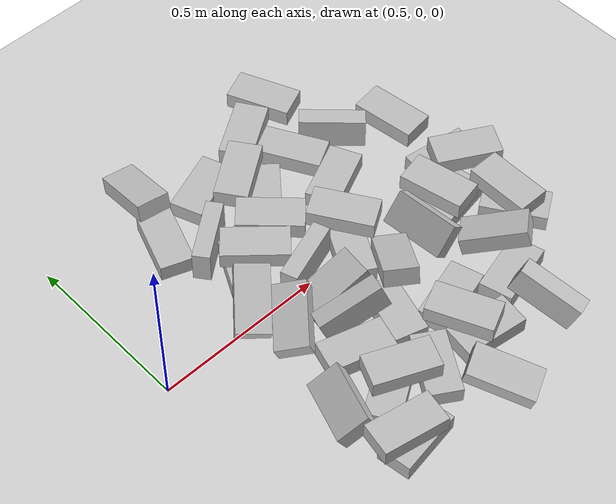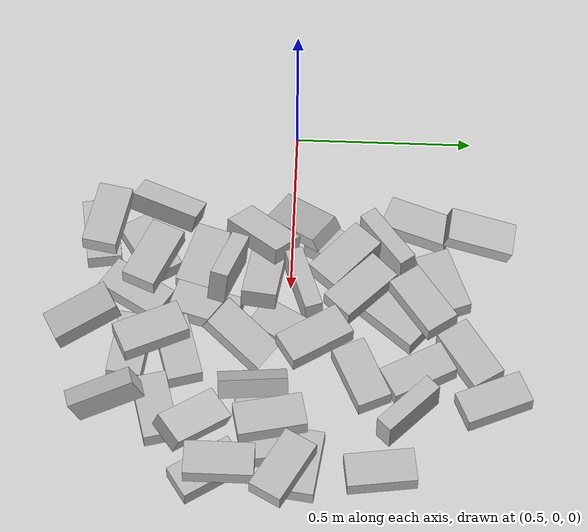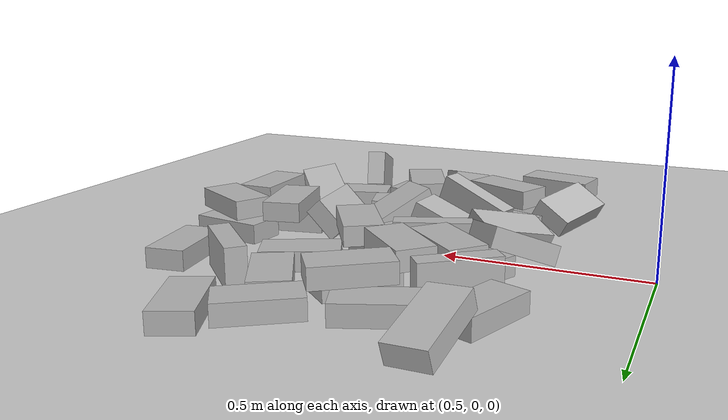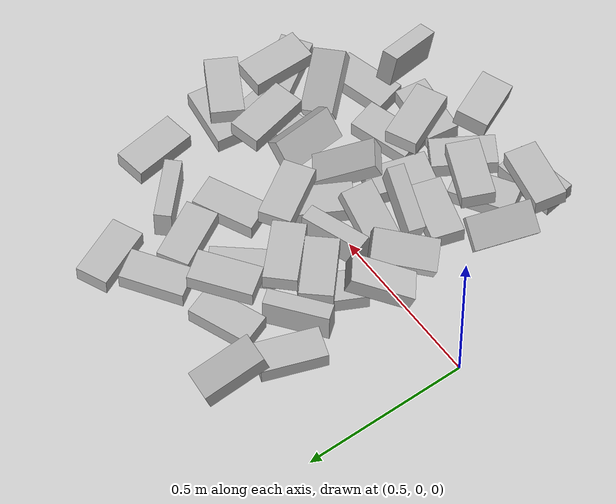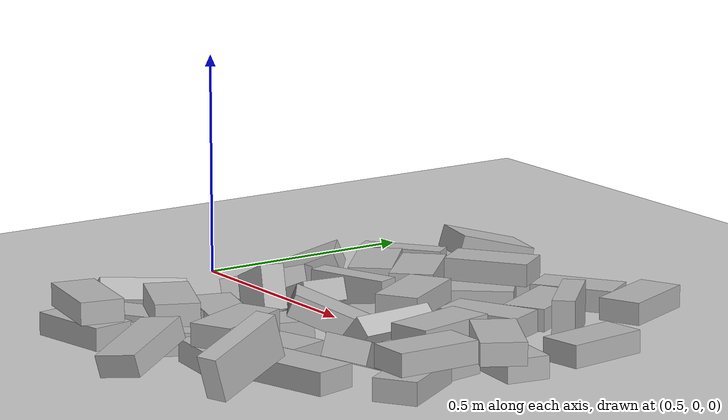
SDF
<sdf version="1.6">
 <world name="default">
  <model name="ground_plane">
   <static>1</static>
   <link name="link">
    <collision name="collision">
     <geometry><plane><normal>0 0 1</normal><size>100 100</size></plane></geometry>
     <surface>
      <contact><collide_bitmask>65535</collide_bitmask></contact>
      <friction><ode><mu>100</mu><mu2>50</mu2></ode></friction>
     </surface>
    </collision>
    <visual name="visual">
     <cast_shadows>0</cast_shadows>
     <geometry><plane><normal>0 0 1</normal><size>100 100</size></plane></geometry>
     <material>
      <script><uri>file://media/materials/scripts/gazebo.material</uri><name>Gazebo/Grey</name></script>
     </material>
    </visual>
   </link>
  </model>
  <model name="dbrick_clone_14_clone_8">
   <static>0</static>
   <self_collide>1</self_collide>
   <link name="link">
    <inertial>
     <mass>2</mass>
     <inertia>
      <ixx>0.0198483</ixx>
      <ixy>0</ixy>
      <ixz>0</ixz>
      <iyy>0.0643333</iyy>
      <iyz>0</iyz>
      <izz>0.0758483</izz>
     </inertia>
    </inertial>
    <collision name="dbrickC"><geometry><box><size>0.19 0.05 0.097</size></box></geometry></collision>
    <visual name="dbrickV">
     <cast_shadows>0</cast_shadows>
     <geometry><box><size>0.19 0.05 0.097</size></box></geometry>
     <material>
      <script>
       <uri>model://dbrick/materials/scripts</uri>
       <uri>model://dbrick/materials/textures</uri>
       <name>vrc/dbrick</name>
      </script>
     </material>
    </visual>
    <self_collide>1</self_collide>
   </link>
   <pose>0.771655 -0.35634 0.053147 -1.03992 -0.075486 -1.91545</pose>
  </model>
  <model name="dbrick_clone_13_clone_9_clone_3">
   <static>0</static>
   <self_collide>1</self_collide>
   <link name="link">
    <inertial>
     <mass>2</mass>
     <inertia>
      <ixx>0.0198483</ixx>
      <ixy>0</ixy>
      <ixz>0</ixz>
      <iyy>0.0643333</iyy>
      <iyz>0</iyz>
      <izz>0.0758483</izz>
     </inertia>
    </inertial>
    <collision name="dbrickC"><geometry><box><size>0.19 0.05 0.097</size></box></geometry></collision>
    <visual name="dbrickV">
     <cast_shadows>0</cast_shadows>
     <geometry><box><size>0.19 0.05 0.097</size></box></geometry>
     <material>
      <script>
       <uri>model://dbrick/materials/scripts</uri>
       <uri>model://dbrick/materials/textures</uri>
       <name>vrc/dbrick</name>
      </script>
     </material>
    </visual>
    <self_collide>1</self_collide>
   </link>
   <pose>1.14423 -0.006562 0.025 -1.5708 -1e-06 1.06223</pose>
  </model>
  <model name="dbrick_clone_13_clone_9_clone_4">
   <static>0</static>
   <self_collide>1</self_collide>
   <link name="link">
    <inertial>
     <mass>2</mass>
     <inertia>
      <ixx>0.0198483</ixx>
      <ixy>0</ixy>
      <ixz>0</ixz>
      <iyy>0.0643333</iyy>
      <iyz>0</iyz>
      <izz>0.0758483</izz>
     </inertia>
    </inertial>
    <collision name="dbrickC"><geometry><box><size>0.19 0.05 0.097</size></box></geometry></collision>
    <visual name="dbrickV">
     <cast_shadows>0</cast_shadows>
     <geometry><box><size>0.19 0.05 0.097</size></box></geometry>
     <material>
      <script>
       <uri>model://dbrick/materials/scripts</uri>
       <uri>model://dbrick/materials/textures</uri>
       <name>vrc/dbrick</name>
      </script>
     </material>
    </visual>
    <self_collide>1</self_collide>
   </link>
   <pose>0.793182 0.35225 0.02488 -1.5708 3.5e-05 1.22738</pose>
  </model>
  <model name="dbrick_clone_13_clone_9_clone_5">
   <static>0</static>
   <self_collide>1</self_collide>
   <link name="link">
    <inertial>
     <mass>2</mass>
     <inertia>
      <ixx>0.0198483</ixx>
      <ixy>0</ixy>
      <ixz>0</ixz>
      <iyy>0.0643333</iyy>
      <iyz>0</iyz>
      <izz>0.0758483</izz>
     </inertia>
    </inertial>
    <collision name="dbrickC"><geometry><box><size>0.19 0.05 0.097</size></box></geometry></collision>
    <visual name="dbrickV">
     <cast_shadows>0</cast_shadows>
     <geometry><box><size>0.19 0.05 0.097</size></box></geometry>
     <material>
      <script>
       <uri>model://dbrick/materials/scripts</uri>
       <uri>model://dbrick/materials/textures</uri>
       <name>vrc/dbrick</name>
      </script>
     </material>
    </visual>
    <self_collide>1</self_collide>
   </link>
   <pose>0.887865 0.139349 0.024999 1.57078 -0 1.0934</pose>
  </model>
  <model name="dbrick_clone_13_clone_9_clone_6">
   <static>0</static>
   <self_collide>1</self_collide>
   <link name="link">
    <inertial>
     <mass>2</mass>
     <inertia>
      <ixx>0.0198483</ixx>
      <ixy>0</ixy>
      <ixz>0</ixz>
      <iyy>0.0643333</iyy>
      <iyz>0</iyz>
      <izz>0.0758483</izz>
     </inertia>
    </inertial>
    <collision name="dbrickC"><geometry><box><size>0.19 0.05 0.097</size></box></geometry></collision>
    <visual name="dbrickV">
     <cast_shadows>0</cast_shadows>
     <geometry><box><size>0.19 0.05 0.097</size></box></geometry>
     <material>
      <script>
       <uri>model://dbrick/materials/scripts</uri>
       <uri>model://dbrick/materials/textures</uri>
       <name>vrc/dbrick</name>
      </script>
     </material>
    </visual>
    <self_collide>1</self_collide>
   </link>
   <pose>1.09893 0.293439 0.025 -1.5708 -0 0.871658</pose>
  </model>
  <model name="dbrick_clone_13_clone_9_clone_8">
   <static>0</static>
   <self_collide>1</self_collide>
   <link name="link">
    <inertial>
     <mass>2</mass>
     <inertia>
      <ixx>0.0198483</ixx>
      <ixy>0</ixy>
      <ixz>0</ixz>
      <iyy>0.0643333</iyy>
      <iyz>0</iyz>
      <izz>0.0758483</izz>
     </inertia>
    </inertial>
    <collision name="dbrickC"><geometry><box><size>0.19 0.05 0.097</size></box></geometry></collision>
    <visual name="dbrickV">
     <cast_shadows>0</cast_shadows>
     <geometry><box><size>0.19 0.05 0.097</size></box></geometry>
     <material>
      <script>
       <uri>model://dbrick/materials/scripts</uri>
       <uri>model://dbrick/materials/textures</uri>
       <name>vrc/dbrick</name>
      </script>
     </material>
    </visual>
    <self_collide>1</self_collide>
   </link>
   <pose>1.08321 -0.233819 0.024998 -1.57076 -0 1.27933</pose>
  </model>
  <model name="dbrick_clone_13_clone_9_clone_9">
   <static>0</static>
   <self_collide>1</self_collide>
   <link name="link">
    <inertial>
     <mass>2</mass>
     <inertia>
      <ixx>0.0198483</ixx>
      <ixy>0</ixy>
      <ixz>0</ixz>
      <iyy>0.0643333</iyy>
      <iyz>0</iyz>
      <izz>0.0758483</izz>
     </inertia>
    </inertial>
    <collision name="dbrickC"><geometry><box><size>0.19 0.05 0.097</size></box></geometry></collision>
    <visual name="dbrickV">
     <cast_shadows>0</cast_shadows>
     <geometry><box><size>0.19 0.05 0.097</size></box></geometry>
     <material>
      <script>
       <uri>model://dbrick/materials/scripts</uri>
       <uri>model://dbrick/materials/textures</uri>
       <name>vrc/dbrick</name>
      </script>
     </material>
    </visual>
    <self_collide>1</self_collide>
   </link>
   <pose>1.03877 -0.428562 0.025 -1.5708 -0 1.01825</pose>
  </model>
  <model name="dbrick_clone_clone_clone">
   <static>0</static>
   <self_collide>1</self_collide>
   <link name="link">
    <inertial>
     <mass>2</mass>
     <inertia>
      <ixx>0.0198483</ixx>
      <ixy>0</ixy>
      <ixz>0</ixz>
      <iyy>0.0643333</iyy>
      <iyz>0</iyz>
      <izz>0.0758483</izz>
     </inertia>
    </inertial>
    <collision name="dbrickC"><geometry><box><size>0.19 0.05 0.097</size></box></geometry></collision>
    <visual name="dbrickV">
     <cast_shadows>0</cast_shadows>
     <geometry><box><size>0.19 0.05 0.097</size></box></geometry>
     <material>
      <script>
       <uri>model://dbrick/materials/scripts</uri>
       <uri>model://dbrick/materials/textures</uri>
       <name>vrc/dbrick</name>
      </script>
     </material>
    </visual>
    <self_collide>1</self_collide>
   </link>
   <pose>0.83533 0.525416 0.052502 -1.63733 -0.270351 -1.66961</pose>
  </model>
  <model name="dbrick_clone_clone_clone_0">
   <static>0</static>
   <self_collide>1</self_collide>
   <link name="link">
    <inertial>
     <mass>2</mass>
     <inertia>
      <ixx>0.0198483</ixx>
      <ixy>0</ixy>
      <ixz>0</ixz>
      <iyy>0.0643333</iyy>
      <iyz>0</iyz>
      <izz>0.0758483</izz>
     </inertia>
    </inertial>
    <collision name="dbrickC"><geometry><box><size>0.19 0.05 0.097</size></box></geometry></collision>
    <visual name="dbrickV">
     <cast_shadows>0</cast_shadows>
     <geometry><box><size>0.19 0.05 0.097</size></box></geometry>
     <material>
      <script>
       <uri>model://dbrick/materials/scripts</uri>
       <uri>model://dbrick/materials/textures</uri>
       <name>vrc/dbrick</name>
      </script>
     </material>
    </visual>
    <self_collide>1</self_collide>
   </link>
   <pose>0.873649 0.266182 0.0485 0 -0 0.654278</pose>
  </model>
  <model name="dbrick_clone_clone_clone_1">
   <static>0</static>
   <self_collide>1</self_collide>
   <link name="link">
    <inertial>
     <mass>2</mass>
     <inertia>
      <ixx>0.0198483</ixx>
      <ixy>0</ixy>
      <ixz>0</ixz>
      <iyy>0.0643333</iyy>
      <iyz>0</iyz>
      <izz>0.0758483</izz>
     </inertia>
    </inertial>
    <collision name="dbrickC"><geometry><box><size>0.19 0.05 0.097</size></box></geometry></collision>
    <visual name="dbrickV">
     <cast_shadows>0</cast_shadows>
     <geometry><box><size>0.19 0.05 0.097</size></box></geometry>
     <material>
      <script>
       <uri>model://dbrick/materials/scripts</uri>
       <uri>model://dbrick/materials/textures</uri>
       <name>vrc/dbrick</name>
      </script>
     </material>
    </visual>
    <self_collide>1</self_collide>
   </link>
   <pose>0.85975 -0.082904 0.056803 1.87498 0.203699 -2.27932</pose>
  </model>
  <model name="dbrick_clone_13_clone_clone_0">
   <static>0</static>
   <self_collide>1</self_collide>
   <link name="link">
    <inertial>
     <mass>2</mass>
     <inertia>
      <ixx>0.0198483</ixx>
      <ixy>0</ixy>
      <ixz>0</ixz>
      <iyy>0.0643333</iyy>
      <iyz>0</iyz>
      <izz>0.0758483</izz>
     </inertia>
    </inertial>
    <collision name="dbrickC"><geometry><box><size>0.19 0.05 0.097</size></box></geometry></collision>
    <visual name="dbrickV">
     <cast_shadows>0</cast_shadows>
     <geometry><box><size>0.19 0.05 0.097</size></box></geometry>
     <material>
      <script>
       <uri>model://dbrick/materials/scripts</uri>
       <uri>model://dbrick/materials/textures</uri>
       <name>vrc/dbrick</name>
      </script>
     </material>
    </visual>
    <self_collide>1</self_collide>
   </link>
   <pose>0.818229 0.028533 0.062457 -1.48034 -0.380373 0.853776</pose>
  </model>
  <model name="dbrick_clone_13_clone_clone_2">
   <static>0</static>
   <self_collide>1</self_collide>
   <link name="link">
    <inertial>
     <mass>2</mass>
     <inertia>
      <ixx>0.0198483</ixx>
      <ixy>0</ixy>
      <ixz>0</ixz>
      <iyy>0.0643333</iyy>
      <iyz>0</iyz>
      <izz>0.0758483</izz>
     </inertia>
    </inertial>
    <collision name="dbrickC"><geometry><box><size>0.19 0.05 0.097</size></box></geometry></collision>
    <visual name="dbrickV">
     <cast_shadows>0</cast_shadows>
     <geometry><box><size>0.19 0.05 0.097</size></box></geometry>
     <material>
      <script>
       <uri>model://dbrick/materials/scripts</uri>
       <uri>model://dbrick/materials/textures</uri>
       <name>vrc/dbrick</name>
      </script>
     </material>
    </visual>
    <self_collide>1</self_collide>
   </link>
   <pose>0.93817 0.148193 0.075007 -1.57093 -3e-05 -0.729422</pose>
  </model>
  <model name="dbrick_clone_13_clone_clone_6">
   <static>0</static>
   <self_collide>1</self_collide>
   <link name="link">
    <inertial>
     <mass>2</mass>
     <inertia>
      <ixx>0.0198483</ixx>
      <ixy>0</ixy>
      <ixz>0</ixz>
      <iyy>0.0643333</iyy>
      <iyz>0</iyz>
      <izz>0.0758483</izz>
     </inertia>
    </inertial>
    <collision name="dbrickC"><geometry><box><size>0.19 0.05 0.097</size></box></geometry></collision>
    <visual name="dbrickV">
     <cast_shadows>0</cast_shadows>
     <geometry><box><size>0.19 0.05 0.097</size></box></geometry>
     <material>
      <script>
       <uri>model://dbrick/materials/scripts</uri>
       <uri>model://dbrick/materials/textures</uri>
       <name>vrc/dbrick</name>
      </script>
     </material>
    </visual>
    <self_collide>1</self_collide>
   </link>
   <pose>0.852528 -0.538452 0.025 -1.57079 -0 0.150649</pose>
  </model>
  <model name="dbrick_clone_13_clone_clone_7">
   <static>0</static>
   <self_collide>1</self_collide>
   <link name="link">
    <inertial>
     <mass>2</mass>
     <inertia>
      <ixx>0.0198483</ixx>
      <ixy>0</ixy>
      <ixz>0</ixz>
      <iyy>0.0643333</iyy>
      <iyz>0</iyz>
      <izz>0.0758483</izz>
     </inertia>
    </inertial>
    <collision name="dbrickC"><geometry><box><size>0.19 0.05 0.097</size></box></geometry></collision>
    <visual name="dbrickV">
     <cast_shadows>0</cast_shadows>
     <geometry><box><size>0.19 0.05 0.097</size></box></geometry>
     <material>
      <script>
       <uri>model://dbrick/materials/scripts</uri>
       <uri>model://dbrick/materials/textures</uri>
       <name>vrc/dbrick</name>
      </script>
     </material>
    </visual>
    <self_collide>1</self_collide>
   </link>
   <pose>0.9527 -0.385069 0.074994 -1.5708 2e-05 -0.413731</pose>
  </model>
  <model name="dbrick_clone_13_clone_clone_12">
   <static>0</static>
   <self_collide>1</self_collide>
   <link name="link">
    <inertial>
     <mass>2</mass>
     <inertia>
      <ixx>0.0198483</ixx>
      <ixy>0</ixy>
      <ixz>0</ixz>
      <iyy>0.0643333</iyy>
      <iyz>0</iyz>
      <izz>0.0758483</izz>
     </inertia>
    </inertial>
    <collision name="dbrickC"><geometry><box><size>0.19 0.05 0.097</size></box></geometry></collision>
    <visual name="dbrickV">
     <cast_shadows>0</cast_shadows>
     <geometry><box><size>0.19 0.05 0.097</size></box></geometry>
     <material>
      <script>
       <uri>model://dbrick/materials/scripts</uri>
       <uri>model://dbrick/materials/textures</uri>
       <name>vrc/dbrick</name>
      </script>
     </material>
    </visual>
    <self_collide>1</self_collide>
   </link>
   <pose>1.03516 0.19455 0.075 -1.57074 6.8e-05 -0.769661</pose>
  </model>
  <model name="dbrick_clone_13_clone_clone_16">
   <static>0</static>
   <self_collide>1</self_collide>
   <link name="link">
    <inertial>
     <mass>2</mass>
     <inertia>
      <ixx>0.0198483</ixx>
      <ixy>0</ixy>
      <ixz>0</ixz>
      <iyy>0.0643333</iyy>
      <iyz>0</iyz>
      <izz>0.0758483</izz>
     </inertia>
    </inertial>
    <collision name="dbrickC"><geometry><box><size>0.19 0.05 0.097</size></box></geometry></collision>
    <visual name="dbrickV">
     <cast_shadows>0</cast_shadows>
     <geometry><box><size>0.19 0.05 0.097</size></box></geometry>
     <material>
      <script>
       <uri>model://dbrick/materials/scripts</uri>
       <uri>model://dbrick/materials/textures</uri>
       <name>vrc/dbrick</name>
      </script>
     </material>
    </visual>
    <self_collide>1</self_collide>
   </link>
   <pose>1.00429 -0.07649 0.057584 -1.57095 -0.368859 -0.117495</pose>
  </model>
  <model name="dbrick_clone_13_clone_clone_17">
   <static>0</static>
   <self_collide>1</self_collide>
   <link name="link">
    <inertial>
     <mass>2</mass>
     <inertia>
      <ixx>0.0198483</ixx>
      <ixy>0</ixy>
      <ixz>0</ixz>
      <iyy>0.0643333</iyy>
      <iyz>0</iyz>
      <izz>0.0758483</izz>
     </inertia>
    </inertial>
    <collision name="dbrickC"><geometry><box><size>0.19 0.05 0.097</size></box></geometry></collision>
    <visual name="dbrickV">
     <cast_shadows>0</cast_shadows>
     <geometry><box><size>0.19 0.05 0.097</size></box></geometry>
     <material>
      <script>
       <uri>model://dbrick/materials/scripts</uri>
       <uri>model://dbrick/materials/textures</uri>
       <name>vrc/dbrick</name>
      </script>
     </material>
    </visual>
    <self_collide>1</self_collide>
   </link>
   <pose>1.2171 -0.43469 0.025 -1.57079 -0 -0.133902</pose>
  </model>
  <model name="dbrick_clone_10_clone_6_clone_1_clone_clone_1_clone">
   <static>0</static>
   <self_collide>1</self_collide>
   <link name="link">
    <inertial>
     <mass>2</mass>
     <inertia>
      <ixx>0.0198483</ixx>
      <ixy>0</ixy>
      <ixz>0</ixz>
      <iyy>0.0643333</iyy>
      <iyz>0</iyz>
      <izz>0.0758483</izz>
     </inertia>
    </inertial>
    <collision name="dbrickC"><geometry><box><size>0.19 0.05 0.097</size></box></geometry></collision>
    <visual name="dbrickV">
     <cast_shadows>0</cast_shadows>
     <geometry><box><size>0.19 0.05 0.097</size></box></geometry>
     <material>
      <script>
       <uri>model://dbrick/materials/scripts</uri>
       <uri>model://dbrick/materials/textures</uri>
       <name>vrc/dbrick</name>
      </script>
     </material>
    </visual>
    <self_collide>1</self_collide>
   </link>
   <pose>0.92903 -0.248348 0.02499 1.5708 -0 -0.291564</pose>
  </model>
  <model name="dbrick_clone_10_clone_6_clone_1_clone_clone_1_clone_0">
   <static>0</static>
   <self_collide>1</self_collide>
   <link name="link">
    <inertial>
     <mass>2</mass>
     <inertia>
      <ixx>0.0198483</ixx>
      <ixy>0</ixy>
      <ixz>0</ixz>
      <iyy>0.0643333</iyy>
      <iyz>0</iyz>
      <izz>0.0758483</izz>
     </inertia>
    </inertial>
    <collision name="dbrickC"><geometry><box><size>0.19 0.05 0.097</size></box></geometry></collision>
    <visual name="dbrickV">
     <cast_shadows>0</cast_shadows>
     <geometry><box><size>0.19 0.05 0.097</size></box></geometry>
     <material>
      <script>
       <uri>model://dbrick/materials/scripts</uri>
       <uri>model://dbrick/materials/textures</uri>
       <name>vrc/dbrick</name>
      </script>
     </material>
    </visual>
    <self_collide>1</self_collide>
   </link>
   <pose>1.01615 0.036061 0.0485 -2e-06 -1e-06 0.337811</pose>
  </model>
  <model name="dbrick_clone_10_clone_6_clone_1_clone_clone_1_clone_3">
   <static>0</static>
   <self_collide>1</self_collide>
   <link name="link">
    <inertial>
     <mass>2</mass>
     <inertia>
      <ixx>0.0198483</ixx>
      <ixy>0</ixy>
      <ixz>0</ixz>
      <iyy>0.0643333</iyy>
      <iyz>0</iyz>
      <izz>0.0758483</izz>
     </inertia>
    </inertial>
    <collision name="dbrickC"><geometry><box><size>0.19 0.05 0.097</size></box></geometry></collision>
    <visual name="dbrickV">
     <cast_shadows>0</cast_shadows>
     <geometry><box><size>0.19 0.05 0.097</size></box></geometry>
     <material>
      <script>
       <uri>model://dbrick/materials/scripts</uri>
       <uri>model://dbrick/materials/textures</uri>
       <name>vrc/dbrick</name>
      </script>
     </material>
    </visual>
    <self_collide>1</self_collide>
   </link>
   <pose>1.07295 0.367752 0.074996 1.57005 7.6e-05 0.621631</pose>
  </model>
  <model name="dbrick_clone_10_clone_6_clone_1_clone_clone_1_clone_4">
   <static>0</static>
   <self_collide>1</self_collide>
   <link name="link">
    <inertial>
     <mass>2</mass>
     <inertia>
      <ixx>0.0198483</ixx>
      <ixy>0</ixy>
      <ixz>0</ixz>
      <iyy>0.0643333</iyy>
      <iyz>0</iyz>
      <izz>0.0758483</izz>
     </inertia>
    </inertial>
    <collision name="dbrickC"><geometry><box><size>0.19 0.05 0.097</size></box></geometry></collision>
    <visual name="dbrickV">
     <cast_shadows>0</cast_shadows>
     <geometry><box><size>0.19 0.05 0.097</size></box></geometry>
     <material>
      <script>
       <uri>model://dbrick/materials/scripts</uri>
       <uri>model://dbrick/materials/textures</uri>
       <name>vrc/dbrick</name>
      </script>
     </material>
    </visual>
    <self_collide>1</self_collide>
   </link>
   <pose>1.21098 0.500499 0.024785 1.57083 -6.8e-05 0.583193</pose>
  </model>
  <model name="dbrick_clone_10_clone_6_clone_1_clone_clone_1_clone_7">
   <static>0</static>
   <self_collide>1</self_collide>
   <link name="link">
    <inertial>
     <mass>2</mass>
     <inertia>
      <ixx>0.0198483</ixx>
      <ixy>0</ixy>
      <ixz>0</ixz>
      <iyy>0.0643333</iyy>
      <iyz>0</iyz>
      <izz>0.0758483</izz>
     </inertia>
    </inertial>
    <collision name="dbrickC"><geometry><box><size>0.19 0.05 0.097</size></box></geometry></collision>
    <visual name="dbrickV">
     <cast_shadows>0</cast_shadows>
     <geometry><box><size>0.19 0.05 0.097</size></box></geometry>
     <material>
      <script>
       <uri>model://dbrick/materials/scripts</uri>
       <uri>model://dbrick/materials/textures</uri>
       <name>vrc/dbrick</name>
      </script>
     </material>
    </visual>
    <self_collide>1</self_collide>
   </link>
   <pose>1.22383 -0.303206 0.025 1.5708 0 0.281377</pose>
  </model>
  <model name="dbrick_0_clone_4">
   <static>0</static>
   <self_collide>1</self_collide>
   <link name="link">
    <inertial>
     <mass>2</mass>
     <inertia>
      <ixx>0.0198483</ixx>
      <ixy>0</ixy>
      <ixz>0</ixz>
      <iyy>0.0643333</iyy>
      <iyz>0</iyz>
      <izz>0.0758483</izz>
     </inertia>
    </inertial>
    <collision name="dbrickC"><geometry><box><size>0.19 0.05 0.097</size></box></geometry></collision>
    <visual name="dbrickV">
     <cast_shadows>0</cast_shadows>
     <geometry><box><size>0.19 0.05 0.097</size></box></geometry>
     <material>
      <script>
       <uri>model://dbrick/materials/scripts</uri>
       <uri>model://dbrick/materials/textures</uri>
       <name>vrc/dbrick</name>
      </script>
     </material>
    </visual>
    <self_collide>1</self_collide>
   </link>
   <pose>0.981514 -0.174781 0.078204 -3.14149 0.350943 2.84975</pose>
  </model>
  <model name="dbrick_0_clone_5">
   <static>0</static>
   <self_collide>1</self_collide>
   <link name="link">
    <inertial>
     <mass>2</mass>
     <inertia>
      <ixx>0.0198483</ixx>
      <ixy>0</ixy>
      <ixz>0</ixz>
      <iyy>0.0643333</iyy>
      <iyz>0</iyz>
      <izz>0.0758483</izz>
     </inertia>
    </inertial>
    <collision name="dbrickC"><geometry><box><size>0.19 0.05 0.097</size></box></geometry></collision>
    <visual name="dbrickV">
     <cast_shadows>0</cast_shadows>
     <geometry><box><size>0.19 0.05 0.097</size></box></geometry>
     <material>
      <script>
       <uri>model://dbrick/materials/scripts</uri>
       <uri>model://dbrick/materials/textures</uri>
       <name>vrc/dbrick</name>
      </script>
     </material>
    </visual>
    <self_collide>1</self_collide>
   </link>
   <pose>1.28257 0.203122 0.024881 -1.5708 3e-06 -2.70724</pose>
  </model>
  <model name="dbrick_0_clone_6">
   <static>0</static>
   <self_collide>1</self_collide>
   <link name="link">
    <inertial>
     <mass>2</mass>
     <inertia>
      <ixx>0.0198483</ixx>
      <ixy>0</ixy>
      <ixz>0</ixz>
      <iyy>0.0643333</iyy>
      <iyz>0</iyz>
      <izz>0.0758483</izz>
     </inertia>
    </inertial>
    <collision name="dbrickC"><geometry><box><size>0.19 0.05 0.097</size></box></geometry></collision>
    <visual name="dbrickV">
     <cast_shadows>0</cast_shadows>
     <geometry><box><size>0.19 0.05 0.097</size></box></geometry>
     <material>
      <script>
       <uri>model://dbrick/materials/scripts</uri>
       <uri>model://dbrick/materials/textures</uri>
       <name>vrc/dbrick</name>
      </script>
     </material>
    </visual>
    <self_collide>1</self_collide>
   </link>
   <pose>1.18748 -0.130406 0.060424 -1.57078 -0.405212 -2.18275</pose>
  </model>
  <model name="dbrick_clone_10_clone_6_clone_2_clone_0_clone">
   <static>0</static>
   <self_collide>1</self_collide>
   <link name="link">
    <inertial>
     <mass>2</mass>
     <inertia>
      <ixx>0.0198483</ixx>
      <ixy>0</ixy>
      <ixz>0</ixz>
      <iyy>0.0643333</iyy>
      <iyz>0</iyz>
      <izz>0.0758483</izz>
     </inertia>
    </inertial>
    <collision name="dbrickC"><geometry><box><size>0.19 0.05 0.097</size></box></geometry></collision>
    <visual name="dbrickV">
     <cast_shadows>0</cast_shadows>
     <geometry><box><size>0.19 0.05 0.097</size></box></geometry>
     <material>
      <script>
       <uri>model://dbrick/materials/scripts</uri>
       <uri>model://dbrick/materials/textures</uri>
       <name>vrc/dbrick</name>
      </script>
     </material>
    </visual>
    <self_collide>1</self_collide>
   </link>
   <pose>1.1932 0.071971 0.074989 1.56985 -0.000525 -1.00794</pose>
  </model>
  <model name="dbrick_clone_10_clone_6_clone_2_clone_0_clone_0">
   <static>0</static>
   <self_collide>1</self_collide>
   <link name="link">
    <inertial>
     <mass>2</mass>
     <inertia>
      <ixx>0.0198483</ixx>
      <ixy>0</ixy>
      <ixz>0</ixz>
      <iyy>0.0643333</iyy>
      <iyz>0</iyz>
      <izz>0.0758483</izz>
     </inertia>
    </inertial>
    <collision name="dbrickC"><geometry><box><size>0.19 0.05 0.097</size></box></geometry></collision>
    <visual name="dbrickV">
     <cast_shadows>0</cast_shadows>
     <geometry><box><size>0.19 0.05 0.097</size></box></geometry>
     <material>
      <script>
       <uri>model://dbrick/materials/scripts</uri>
       <uri>model://dbrick/materials/textures</uri>
       <name>vrc/dbrick</name>
      </script>
     </material>
    </visual>
    <self_collide>1</self_collide>
   </link>
   <pose>1.19095 -0.377221 0.074988 1.57075 4.1e-05 -1.13744</pose>
  </model>
  <model name="dbrick_clone_10_clone_6_clone_2_clone_0_clone_17">
   <static>0</static>
   <self_collide>1</self_collide>
   <link name="link">
    <inertial>
     <mass>2</mass>
     <inertia>
      <ixx>0.0198483</ixx>
      <ixy>0</ixy>
      <ixz>0</ixz>
      <iyy>0.0643333</iyy>
      <iyz>0</iyz>
      <izz>0.0758483</izz>
     </inertia>
    </inertial>
    <collision name="dbrickC"><geometry><box><size>0.19 0.05 0.097</size></box></geometry></collision>
    <visual name="dbrickV">
     <cast_shadows>0</cast_shadows>
     <geometry><box><size>0.19 0.05 0.097</size></box></geometry>
     <material>
      <script>
       <uri>model://dbrick/materials/scripts</uri>
       <uri>model://dbrick/materials/textures</uri>
       <name>vrc/dbrick</name>
      </script>
     </material>
    </visual>
    <self_collide>1</self_collide>
   </link>
   <pose>1.26846 0.358415 0.025 1.5708 -0 -1.0674</pose>
  </model>
  <model name="dbrick_clone_10_clone_6_clone_2_clone_0_clone_18">
   <static>0</static>
   <self_collide>1</self_collide>
   <link name="link">
    <inertial>
     <mass>2</mass>
     <inertia>
      <ixx>0.0198483</ixx>
      <ixy>0</ixy>
      <ixz>0</ixz>
      <iyy>0.0643333</iyy>
      <iyz>0</iyz>
      <izz>0.0758483</izz>
     </inertia>
    </inertial>
    <collision name="dbrickC"><geometry><box><size>0.19 0.05 0.097</size></box></geometry></collision>
    <visual name="dbrickV">
     <cast_shadows>0</cast_shadows>
     <geometry><box><size>0.19 0.05 0.097</size></box></geometry>
     <material>
      <script>
       <uri>model://dbrick/materials/scripts</uri>
       <uri>model://dbrick/materials/textures</uri>
       <name>vrc/dbrick</name>
      </script>
     </material>
    </visual>
    <self_collide>1</self_collide>
   </link>
   <pose>1.44658 -0.03993 0.075002 1.5708 1.9e-05 -1.35764</pose>
  </model>
  <model name="dbrick_clone_10_clone_6_clone_2_clone_0_clone_19">
   <static>0</static>
   <self_collide>1</self_collide>
   <link name="link">
    <inertial>
     <mass>2</mass>
     <inertia>
      <ixx>0.0198483</ixx>
      <ixy>0</ixy>
      <ixz>0</ixz>
      <iyy>0.0643333</iyy>
      <iyz>0</iyz>
      <izz>0.0758483</izz>
     </inertia>
    </inertial>
    <collision name="dbrickC"><geometry><box><size>0.19 0.05 0.097</size></box></geometry></collision>
    <visual name="dbrickV">
     <cast_shadows>0</cast_shadows>
     <geometry><box><size>0.19 0.05 0.097</size></box></geometry>
     <material>
      <script>
       <uri>model://dbrick/materials/scripts</uri>
       <uri>model://dbrick/materials/textures</uri>
       <name>vrc/dbrick</name>
      </script>
     </material>
    </visual>
    <self_collide>1</self_collide>
   </link>
   <pose>1.45335 -0.249238 0.061123 1.41294 -0.326926 -0.853554</pose>
  </model>
  <model name="dbrick_clone_10_clone_6_clone_2_clone_0_clone_20">
   <static>0</static>
   <self_collide>1</self_collide>
   <link name="link">
    <inertial>
     <mass>2</mass>
     <inertia>
      <ixx>0.0198483</ixx>
      <ixy>0</ixy>
      <ixz>0</ixz>
      <iyy>0.0643333</iyy>
      <iyz>0</iyz>
      <izz>0.0758483</izz>
     </inertia>
    </inertial>
    <collision name="dbrickC"><geometry><box><size>0.19 0.05 0.097</size></box></geometry></collision>
    <visual name="dbrickV">
     <cast_shadows>0</cast_shadows>
     <geometry><box><size>0.19 0.05 0.097</size></box></geometry>
     <material>
      <script>
       <uri>model://dbrick/materials/scripts</uri>
       <uri>model://dbrick/materials/textures</uri>
       <name>vrc/dbrick</name>
      </script>
     </material>
    </visual>
    <self_collide>1</self_collide>
   </link>
   <pose>1.39115 -0.490516 0.07543 0.001472 0.31299 -1.29409</pose>
  </model>
  <model name="dbrick_clone_0_clone">
   <static>0</static>
   <self_collide>1</self_collide>
   <link name="link">
    <inertial>
     <mass>2</mass>
     <inertia>
      <ixx>0.0198483</ixx>
      <ixy>0</ixy>
      <ixz>0</ixz>
      <iyy>0.0643333</iyy>
      <iyz>0</iyz>
      <izz>0.0758483</izz>
     </inertia>
    </inertial>
    <collision name="dbrickC"><geometry><box><size>0.19 0.05 0.097</size></box></geometry></collision>
    <visual name="dbrickV">
     <cast_shadows>0</cast_shadows>
     <geometry><box><size>0.19 0.05 0.097</size></box></geometry>
     <material>
      <script>
       <uri>model://dbrick/materials/scripts</uri>
       <uri>model://dbrick/materials/textures</uri>
       <name>vrc/dbrick</name>
      </script>
     </material>
    </visual>
    <self_collide>1</self_collide>
   </link>
   <pose>0.833594 -0.521409 0.074998 1.57083 -8e-06 -0.192502</pose>
  </model>
  <model name="dbrick_clone_0_clone_1">
   <static>0</static>
   <self_collide>1</self_collide>
   <link name="link">
    <inertial>
     <mass>2</mass>
     <inertia>
      <ixx>0.0198483</ixx>
      <ixy>0</ixy>
      <ixz>0</ixz>
      <iyy>0.0643333</iyy>
      <iyz>0</iyz>
      <izz>0.0758483</izz>
     </inertia>
    </inertial>
    <collision name="dbrickC"><geometry><box><size>0.19 0.05 0.097</size></box></geometry></collision>
    <visual name="dbrickV">
     <cast_shadows>0</cast_shadows>
     <geometry><box><size>0.19 0.05 0.097</size></box></geometry>
     <material>
      <script>
       <uri>model://dbrick/materials/scripts</uri>
       <uri>model://dbrick/materials/textures</uri>
       <name>vrc/dbrick</name>
      </script>
     </material>
    </visual>
    <self_collide>1</self_collide>
   </link>
   <pose>1.39824 0.332099 0.0485 -0 -0 -0.769168</pose>
  </model>
  <model name="dbrick_clone_0_clone_2">
   <static>0</static>
   <self_collide>1</self_collide>
   <link name="link">
    <inertial>
     <mass>2</mass>
     <inertia>
      <ixx>0.0198483</ixx>
      <ixy>0</ixy>
      <ixz>0</ixz>
      <iyy>0.0643333</iyy>
      <iyz>0</iyz>
      <izz>0.0758483</izz>
     </inertia>
    </inertial>
    <collision name="dbrickC"><geometry><box><size>0.19 0.05 0.097</size></box></geometry></collision>
    <visual name="dbrickV">
     <cast_shadows>0</cast_shadows>
     <geometry><box><size>0.19 0.05 0.097</size></box></geometry>
     <material>
      <script>
       <uri>model://dbrick/materials/scripts</uri>
       <uri>model://dbrick/materials/textures</uri>
       <name>vrc/dbrick</name>
      </script>
     </material>
    </visual>
    <self_collide>1</self_collide>
   </link>
   <pose>1.55969 0.049213 0.025 -1.5708 3e-06 -0.138379</pose>
  </model>
  <model name="dbrick_clone_10_clone_6_clone_1_clone_clone_7">
   <static>0</static>
   <self_collide>1</self_collide>
   <link name="link">
    <inertial>
     <mass>2</mass>
     <inertia>
      <ixx>0.0198483</ixx>
      <ixy>0</ixy>
      <ixz>0</ixz>
      <iyy>0.0643333</iyy>
      <iyz>0</iyz>
      <izz>0.0758483</izz>
     </inertia>
    </inertial>
    <collision name="dbrickC"><geometry><box><size>0.19 0.05 0.097</size></box></geometry></collision>
    <visual name="dbrickV">
     <cast_shadows>0</cast_shadows>
     <geometry><box><size>0.19 0.05 0.097</size></box></geometry>
     <material>
      <script>
       <uri>model://dbrick/materials/scripts</uri>
       <uri>model://dbrick/materials/textures</uri>
       <name>vrc/dbrick</name>
      </script>
     </material>
    </visual>
    <self_collide>1</self_collide>
   </link>
   <pose>0.900248 -0.398527 0.024998 1.57076 -0 0.565519</pose>
  </model>
  <model name="dbrick_clone_10_clone_6_clone_1_clone_clone_9">
   <static>0</static>
   <self_collide>1</self_collide>
   <link name="link">
    <inertial>
     <mass>2</mass>
     <inertia>
      <ixx>0.0198483</ixx>
      <ixy>0</ixy>
      <ixz>0</ixz>
      <iyy>0.0643333</iyy>
      <iyz>0</iyz>
      <izz>0.0758483</izz>
     </inertia>
    </inertial>
    <collision name="dbrickC"><geometry><box><size>0.19 0.05 0.097</size></box></geometry></collision>
    <visual name="dbrickV">
     <cast_shadows>0</cast_shadows>
     <geometry><box><size>0.19 0.05 0.097</size></box></geometry>
     <material>
      <script>
       <uri>model://dbrick/materials/scripts</uri>
       <uri>model://dbrick/materials/textures</uri>
       <name>vrc/dbrick</name>
      </script>
     </material>
    </visual>
    <self_collide>1</self_collide>
   </link>
   <pose>1.46314 -0.073633 0.024997 1.57074 -0 0.176982</pose>
  </model>
  <model name="dbrick_clone_10_clone_6_clone_1_clone_clone_10">
   <static>0</static>
   <self_collide>1</self_collide>
   <link name="link">
    <inertial>
     <mass>2</mass>
     <inertia>
      <ixx>0.0198483</ixx>
      <ixy>0</ixy>
      <ixz>0</ixz>
      <iyy>0.0643333</iyy>
      <iyz>0</iyz>
      <izz>0.0758483</izz>
     </inertia>
    </inertial>
    <collision name="dbrickC"><geometry><box><size>0.19 0.05 0.097</size></box></geometry></collision>
    <visual name="dbrickV">
     <cast_shadows>0</cast_shadows>
     <geometry><box><size>0.19 0.05 0.097</size></box></geometry>
     <material>
      <script>
       <uri>model://dbrick/materials/scripts</uri>
       <uri>model://dbrick/materials/textures</uri>
       <name>vrc/dbrick</name>
      </script>
     </material>
    </visual>
    <self_collide>1</self_collide>
   </link>
   <pose>1.40429 -0.35492 0.025001 1.57079 1.4e-05 0.25695</pose>
  </model>
  <model name="dbrick_clone_10_clone_6_clone_1_clone_clone_19">
   <static>0</static>
   <self_collide>1</self_collide>
   <link name="link">
    <inertial>
     <mass>2</mass>
     <inertia>
      <ixx>0.0198483</ixx>
      <ixy>0</ixy>
      <ixz>0</ixz>
      <iyy>0.0643333</iyy>
      <iyz>0</iyz>
      <izz>0.0758483</izz>
     </inertia>
    </inertial>
    <collision name="dbrickC"><geometry><box><size>0.19 0.05 0.097</size></box></geometry></collision>
    <visual name="dbrickV">
     <cast_shadows>0</cast_shadows>
     <geometry><box><size>0.19 0.05 0.097</size></box></geometry>
     <material>
      <script>
       <uri>model://dbrick/materials/scripts</uri>
       <uri>model://dbrick/materials/textures</uri>
       <name>vrc/dbrick</name>
      </script>
     </material>
    </visual>
    <self_collide>1</self_collide>
   </link>
   <pose>0.9868 0.423676 0.024981 1.57082 2.3e-05 0.365256</pose>
  </model>
  <model name="dbrick_clone_10_clone_6_clone_1_clone_clone_28">
   <static>0</static>
   <self_collide>1</self_collide>
   <link name="link">
    <inertial>
     <mass>2</mass>
     <inertia>
      <ixx>0.0198483</ixx>
      <ixy>0</ixy>
      <ixz>0</ixz>
      <iyy>0.0643333</iyy>
      <iyz>0</iyz>
      <izz>0.0758483</izz>
     </inertia>
    </inertial>
    <collision name="dbrickC"><geometry><box><size>0.19 0.05 0.097</size></box></geometry></collision>
    <visual name="dbrickV">
     <cast_shadows>0</cast_shadows>
     <geometry><box><size>0.19 0.05 0.097</size></box></geometry>
     <material>
      <script>
       <uri>model://dbrick/materials/scripts</uri>
       <uri>model://dbrick/materials/textures</uri>
       <name>vrc/dbrick</name>
      </script>
     </material>
    </visual>
    <self_collide>1</self_collide>
   </link>
   <pose>1.58479 -0.205231 0.025 1.5708 0 -0.994231</pose>
  </model>
  <model name="dbrick_clone_10_clone_6_clone_1_clone_clone_4_clone">
   <static>0</static>
   <self_collide>1</self_collide>
   <link name="link">
    <inertial>
     <mass>2</mass>
     <inertia>
      <ixx>0.0198483</ixx>
      <ixy>0</ixy>
      <ixz>0</ixz>
      <iyy>0.0643333</iyy>
      <iyz>0</iyz>
      <izz>0.0758483</izz>
     </inertia>
    </inertial>
    <collision name="dbrickC"><geometry><box><size>0.19 0.05 0.097</size></box></geometry></collision>
    <visual name="dbrickV">
     <cast_shadows>0</cast_shadows>
     <geometry><box><size>0.19 0.05 0.097</size></box></geometry>
     <material>
      <script>
       <uri>model://dbrick/materials/scripts</uri>
       <uri>model://dbrick/materials/textures</uri>
       <name>vrc/dbrick</name>
      </script>
     </material>
    </visual>
    <self_collide>1</self_collide>
   </link>
   <pose>1.59558 0.00116 0.075004 1.57097 -1.7e-05 -0.507954</pose>
  </model>
  <model name="dbrick_clone_10_clone_6_clone_2_clone_0_clone_3_clone">
   <static>0</static>
   <self_collide>1</self_collide>
   <link name="link">
    <inertial>
     <mass>2</mass>
     <inertia>
      <ixx>0.0198483</ixx>
      <ixy>0</ixy>
      <ixz>0</ixz>
      <iyy>0.0643333</iyy>
      <iyz>0</iyz>
      <izz>0.0758483</izz>
     </inertia>
    </inertial>
    <collision name="dbrickC"><geometry><box><size>0.19 0.05 0.097</size></box></geometry></collision>
    <visual name="dbrickV">
     <cast_shadows>0</cast_shadows>
     <geometry><box><size>0.19 0.05 0.097</size></box></geometry>
     <material>
      <script>
       <uri>model://dbrick/materials/scripts</uri>
       <uri>model://dbrick/materials/textures</uri>
       <name>vrc/dbrick</name>
      </script>
     </material>
    </visual>
    <self_collide>1</self_collide>
   </link>
   <pose>1.13416 -0.572632 0.0504 1.71697 0.204182 -1.07655</pose>
  </model>
  <model name="dbrick_clone_10_clone_6_clone_2_clone_0_clone_3_clone_5">
   <static>0</static>
   <self_collide>1</self_collide>
   <link name="link">
    <inertial>
     <mass>2</mass>
     <inertia>
      <ixx>0.0198483</ixx>
      <ixy>0</ixy>
      <ixz>0</ixz>
      <iyy>0.0643333</iyy>
      <iyz>0</iyz>
      <izz>0.0758483</izz>
     </inertia>
    </inertial>
    <collision name="dbrickC"><geometry><box><size>0.19 0.05 0.097</size></box></geometry></collision>
    <visual name="dbrickV">
     <cast_shadows>0</cast_shadows>
     <geometry><box><size>0.19 0.05 0.097</size></box></geometry>
     <material>
      <script>
       <uri>model://dbrick/materials/scripts</uri>
       <uri>model://dbrick/materials/textures</uri>
       <name>vrc/dbrick</name>
      </script>
     </material>
    </visual>
    <self_collide>1</self_collide>
   </link>
   <pose>1.58437 -0.170134 0.075007 1.57078 6.7e-05 -1.57414</pose>
  </model>
  <model name="dbrick_clone_10_clone_6_clone_2_clone_0_clone_3_clone_6">
   <static>0</static>
   <self_collide>1</self_collide>
   <link name="link">
    <inertial>
     <mass>2</mass>
     <inertia>
      <ixx>0.0198483</ixx>
      <ixy>0</ixy>
      <ixz>0</ixz>
      <iyy>0.0643333</iyy>
      <iyz>0</iyz>
      <izz>0.0758483</izz>
     </inertia>
    </inertial>
    <collision name="dbrickC"><geometry><box><size>0.19 0.05 0.097</size></box></geometry></collision>
    <visual name="dbrickV">
     <cast_shadows>0</cast_shadows>
     <geometry><box><size>0.19 0.05 0.097</size></box></geometry>
     <material>
      <script>
       <uri>model://dbrick/materials/scripts</uri>
       <uri>model://dbrick/materials/textures</uri>
       <name>vrc/dbrick</name>
      </script>
     </material>
    </visual>
    <self_collide>1</self_collide>
   </link>
   <pose>1.57047 0.261932 0.025 1.5708 -0 -1.43415</pose>
  </model>
  <model name="dbrick_clone_10_clone_6_clone_2_clone_0_clone_3_clone_7">
   <static>0</static>
   <self_collide>1</self_collide>
   <link name="link">
    <inertial>
     <mass>2</mass>
     <inertia>
      <ixx>0.0198483</ixx>
      <ixy>0</ixy>
      <ixz>0</ixz>
      <iyy>0.0643333</iyy>
      <iyz>0</iyz>
      <izz>0.0758483</izz>
     </inertia>
    </inertial>
    <collision name="dbrickC"><geometry><box><size>0.19 0.05 0.097</size></box></geometry></collision>
    <visual name="dbrickV">
     <cast_shadows>0</cast_shadows>
     <geometry><box><size>0.19 0.05 0.097</size></box></geometry>
     <material>
      <script>
       <uri>model://dbrick/materials/scripts</uri>
       <uri>model://dbrick/materials/textures</uri>
       <name>vrc/dbrick</name>
      </script>
     </material>
    </visual>
    <self_collide>1</self_collide>
   </link>
   <pose>1.34664 0.565677 0.025019 1.5704 -0 -1.15944</pose>
  </model>
  <model name="dbrick_clone_clone_clone_clone_0">
   <static>0</static>
   <self_collide>1</self_collide>
   <link name="link">
    <inertial>
     <mass>2</mass>
     <inertia>
      <ixx>0.0198483</ixx>
      <ixy>0</ixy>
      <ixz>0</ixz>
      <iyy>0.0643333</iyy>
      <iyz>0</iyz>
      <izz>0.0758483</izz>
     </inertia>
    </inertial>
    <collision name="dbrickC"><geometry><box><size>0.19 0.05 0.097</size></box></geometry></collision>
    <visual name="dbrickV">
     <cast_shadows>0</cast_shadows>
     <geometry><box><size>0.19 0.05 0.097</size></box></geometry>
     <material>
      <script>
       <uri>model://dbrick/materials/scripts</uri>
       <uri>model://dbrick/materials/textures</uri>
       <name>vrc/dbrick</name>
      </script>
     </material>
    </visual>
    <self_collide>1</self_collide>
   </link>
   <pose>1.33269 -0.091586 0.052329 -0.763158 -0 -1.4875</pose>
  </model>
 </world>
</sdf>
